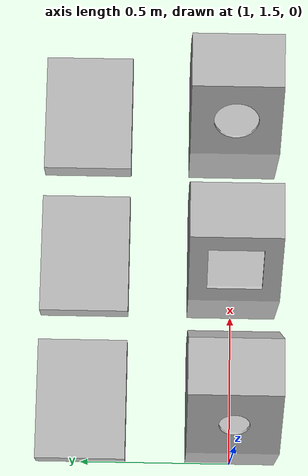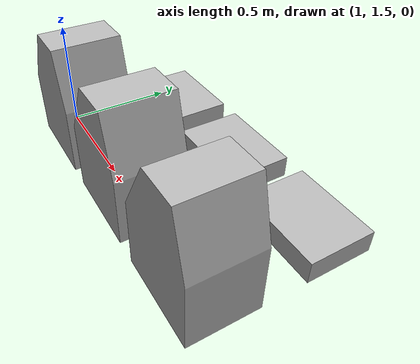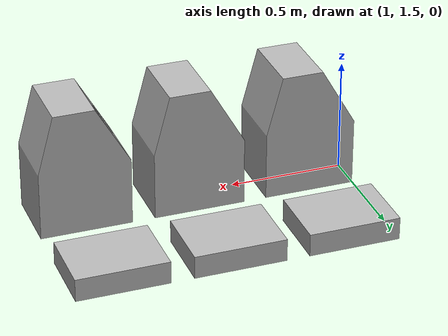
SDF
<sdf version="1.6">
 <world name="default">
  <model name="green_bin">
   <pose>1 1.5 0.0  0 0 0</pose>
   <link name="body">
    <inertial>
     <pose>0.21 0 0.25 0 0 0</pose>
     <mass>1.4</mass>
     <inertia><ixx>0.06</ixx><ixy>0.007</ixy><ixz>0.004</ixz><iyy>0</iyy><iyz>0</iyz><izz>0</izz></inertia>
    </inertial>
    <visual name="visual"><geometry><mesh><uri>model://meshes/bin_green.dae</uri></mesh></geometry></visual>
    <collision name="collision">
     <geometry><mesh><uri>model://meshes/bin_green.dae</uri></mesh></geometry>
    </collision>
   </link>
  </model>
  <model name="green_stack">
   <pose>1 2 0.0  0 0 0</pose>
   <link name="body">
    <visual name="visual"><geometry><mesh><uri>model://meshes/bin_stack_green.dae</uri></mesh></geometry></visual>
    <collision name="collision">
     <pose>0.2 0 0.05  0 0 0</pose>
     <geometry><box><size>0.4 0.3 0.1</size></box></geometry>
    </collision>
   </link>
  </model>
  <model name="blue_bin">
   <pose>1.5 1.5 0.0  0 0 0</pose>
   <link name="body">
    <inertial>
     <pose>0.21 0 0.25 0 0 0</pose>
     <mass>1.4</mass>
     <inertia><ixx>0.06</ixx><ixy>0.007</ixy><ixz>0.004</ixz><iyy>0</iyy><iyz>0</iyz><izz>0</izz></inertia>
    </inertial>
    <visual name="visual"><geometry><mesh><uri>model://meshes/bin_blue.dae</uri></mesh></geometry></visual>
    <collision name="collision">
     <geometry><mesh><uri>model://meshes/bin_blue.dae</uri></mesh></geometry>
    </collision>
   </link>
  </model>
  <model name="blue_stack">
   <pose>1.5 2 0.0  0 0 0</pose>
   <link name="body">
    <visual name="visual"><geometry><mesh><uri>model://meshes/bin_stack_blue.dae</uri></mesh></geometry></visual>
    <collision name="collision">
     <pose>0.2 0 0.05  0 0 0</pose>
     <geometry><box><size>0.4 0.3 0.1</size></box></geometry>
    </collision>
   </link>
  </model>
  <model name="yellow_bin">
   <pose>2 1.5 0.0  0 0 0</pose>
   <link name="body">
    <inertial>
     <pose>0.21 0 0.25 0 0 0</pose>
     <mass>1.4</mass>
     <inertia><ixx>0.06</ixx><ixy>0.007</ixy><ixz>0.004</ixz><iyy>0</iyy><iyz>0</iyz><izz>0</izz></inertia>
    </inertial>
    <visual name="visual"><geometry><mesh><uri>model://meshes/bin_yellow.dae</uri></mesh></geometry></visual>
    <collision name="collision">
     <geometry><mesh><uri>model://meshes/bin_yellow.dae</uri></mesh></geometry>
    </collision>
   </link>
  </model>
  <model name="yellow_stack">
   <pose>2 2 0.0  0 0 0</pose>
   <link name="body">
    <visual name="visual">
     <geometry><mesh><uri>model://meshes/bin_stack_yellow.dae</uri></mesh></geometry>
    </visual>
    <collision name="collision">
     <pose>0.2 0 0.05  0 0 0</pose>
     <geometry><box><size>0.4 0.3 0.1</size></box></geometry>
    </collision>
   </link>
  </model>
  <light name="sun" type="directional">
   <pose>0 0 10 0 -0 0</pose>
   <diffuse>0.8 0.8 0.8 1</diffuse>
   <specular>0.2 0.2 0.2 1</specular>
   <attenuation>
    <range>1000</range>
    <constant>0.9</constant>
    <linear>0.01</linear>
    <quadratic>0.001</quadratic>
   </attenuation>
   <direction>-0.5 0.1 -0.9</direction>
  </light>
  <gravity>0 0 -9.8</gravity>
  <magnetic_field>6e-06 2.3e-05 -4.2e-05</magnetic_field>
  <atmosphere type="adiabatic"/>
  <physics name="default_physics" default="0" type="ode">
   <max_step_size>0.001</max_step_size>
   <real_time_factor>1</real_time_factor>
   <real_time_update_rate>1000</real_time_update_rate>
  </physics>
  <scene><ambient>0.4 0.4 0.4 1</ambient><background>0.7 0.7 0.7 1</background><shadows>1</shadows></scene>
  <audio><device>default</device></audio>
  <spherical_coordinates>
   <surface_model>EARTH_WGS84</surface_model>
   <latitude_deg>0</latitude_deg>
   <longitude_deg>0</longitude_deg>
   <elevation>0</elevation>
   <heading_deg>0</heading_deg>
  </spherical_coordinates>
  <light name="user_point_light_0" type="point">
   <pose>0.744185 -5.16239 1 0 -0 0</pose>
   <diffuse>0.13 0.13 0.13 0.4</diffuse>
   <specular>0.1 0.1 0.1 1</specular>
   <attenuation>
    <range>20</range>
    <constant>0.5</constant>
    <linear>0.01</linear>
    <quadratic>0.001</quadratic>
   </attenuation>
   <cast_shadows>0</cast_shadows>
   <direction>0 0 -1</direction>
  </light>
  <light name="user_point_light_1" type="point">
   <pose>-3.75875 4.04741 1 0 -0 0</pose>
   <diffuse>0.13 0.13 0.13 0.4</diffuse>
   <specular>0.1 0.1 0.1 1</specular>
   <attenuation>
    <range>20</range>
    <constant>0.5</constant>
    <linear>0.01</linear>
    <quadratic>0.001</quadratic>
   </attenuation>
   <cast_shadows>0</cast_shadows>
   <direction>0 0 -1</direction>
  </light>
  <light name="user_point_light_2" type="point">
   <pose>2.95824 11.4841 1 0 -0 0</pose>
   <diffuse>0.13 0.13 0.13 0.4</diffuse>
   <specular>0.1 0.1 0.1 1</specular>
   <attenuation>
    <range>20</range>
    <constant>0.5</constant>
    <linear>0.01</linear>
    <quadratic>0.001</quadratic>
   </attenuation>
   <cast_shadows>0</cast_shadows>
   <direction>0 0 -1</direction>
  </light>
 </world>
</sdf>
